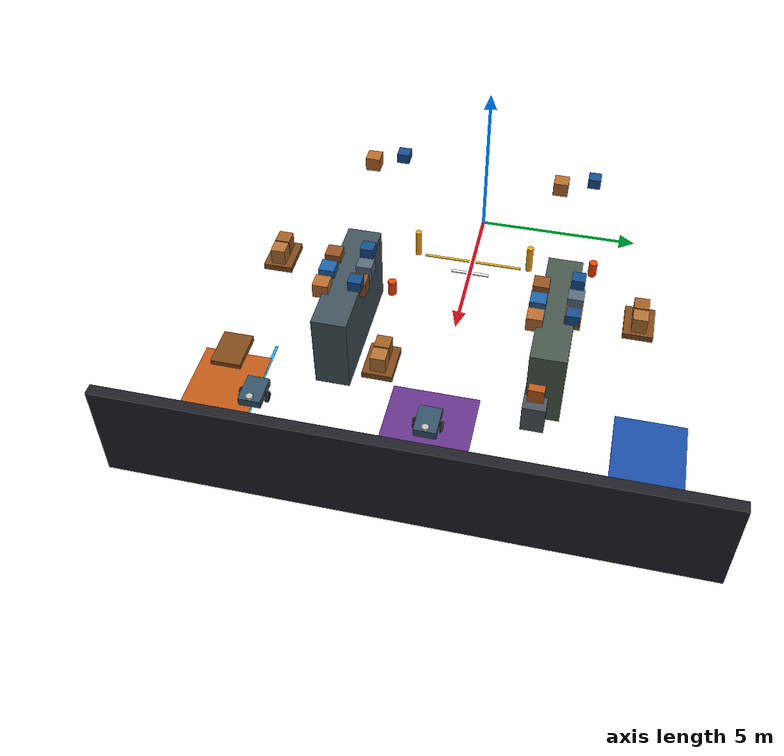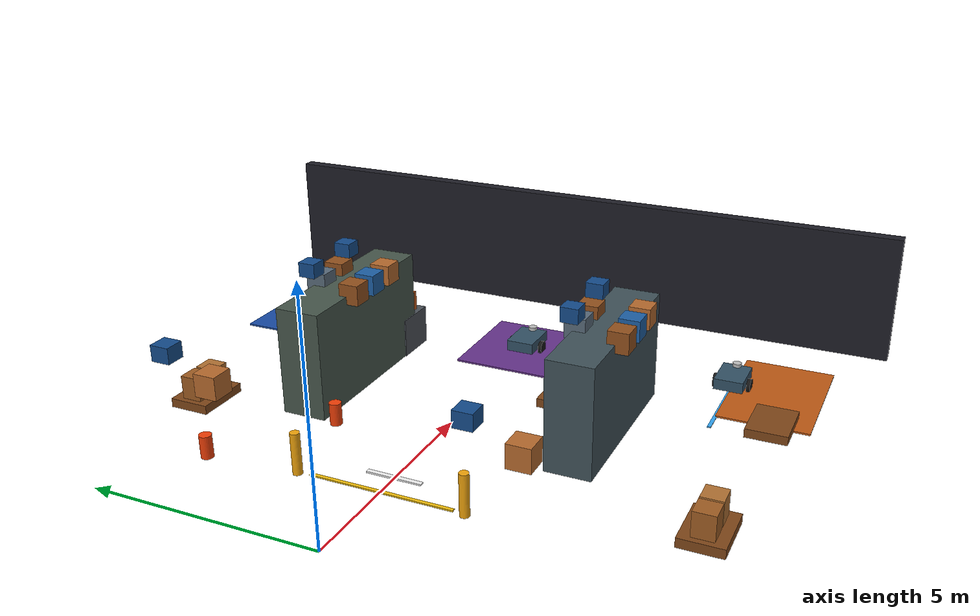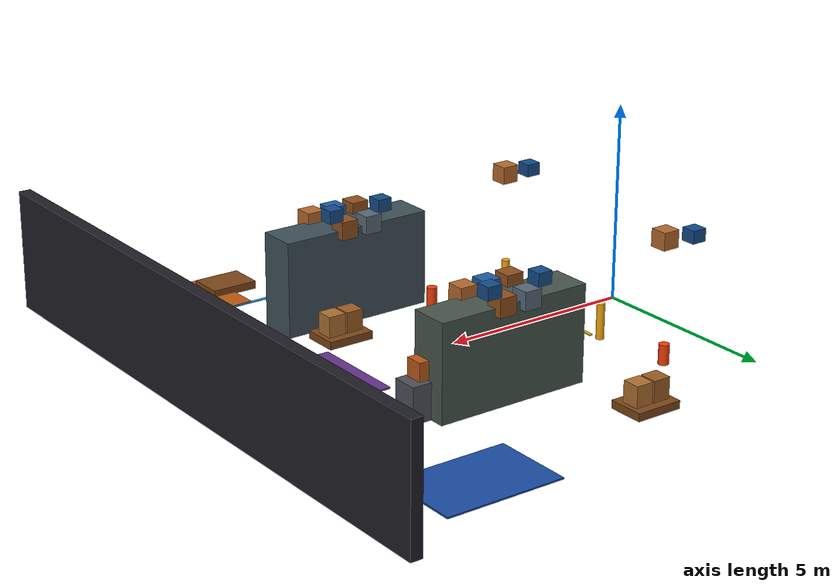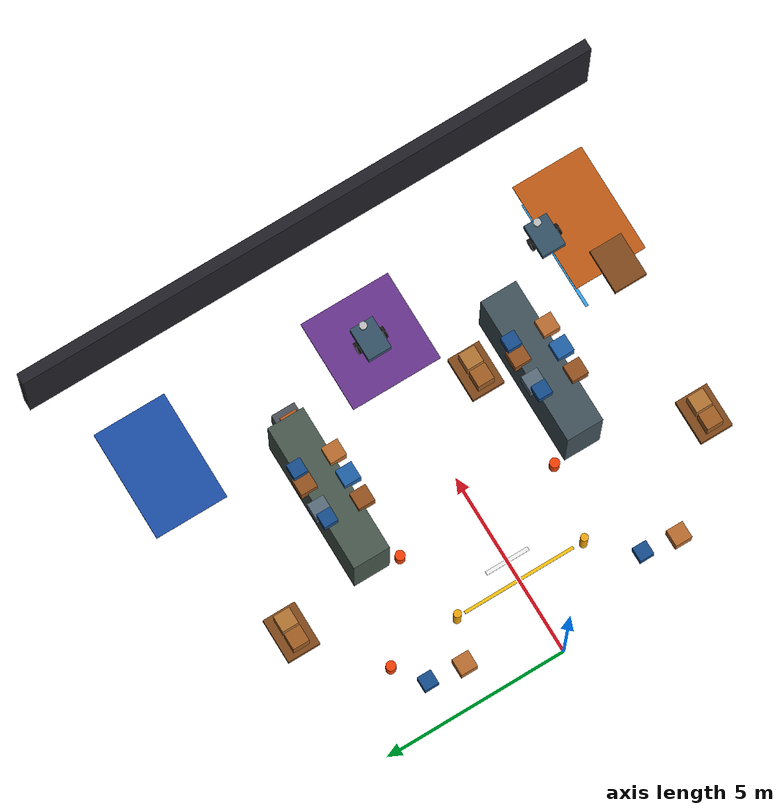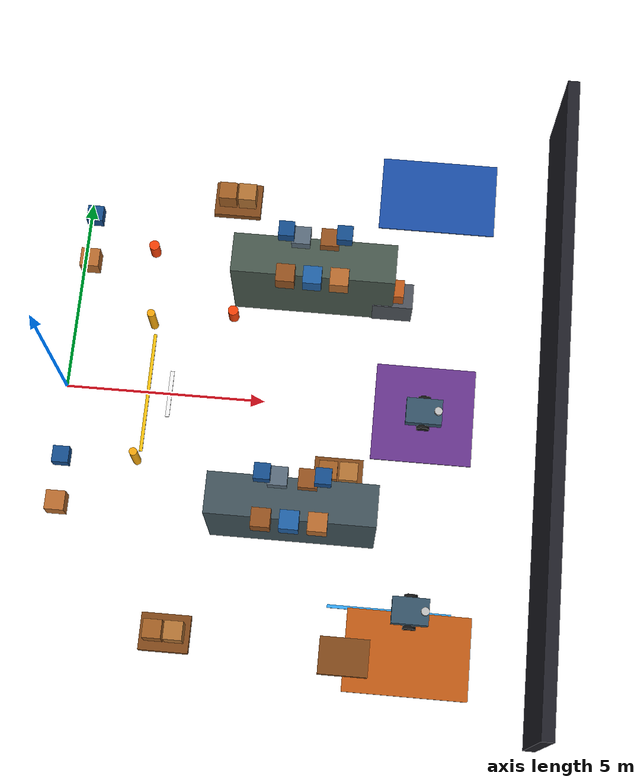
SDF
<sdf version="1.9">
 <world name="synaids_advanced_warehouse">
  <model name="wall_east">
   <static>true</static>
   <pose>12 0 1.5 0 0 0</pose>
   <link name="link">
    <collision name="collision"><geometry><box><size>0.3 16 3</size></box></geometry></collision>
    <visual name="visual">
     <geometry><box><size>0.3 16 3</size></box></geometry>
     <material><ambient>0.08 0.08 0.10 1</ambient><diffuse>0.12 0.12 0.15 1</diffuse></material>
    </visual>
   </link>
  </model>
  <model name="shelf_3">
   <static>true</static>
   <pose>6 3 1.2 0 0 0</pose>
   <link name="link">
    <collision name="collision"><geometry><box><size>4 1.0 2.4</size></box></geometry></collision>
    <visual name="visual">
     <geometry><box><size>4 1.0 2.4</size></box></geometry>
     <material><ambient>0.12 0.16 0.14 1</ambient><diffuse>0.28 0.34 0.30 1</diffuse></material>
    </visual>
   </link>
  </model>
  <model name="shelf_6">
   <static>true</static>
   <pose>6 -3 1.2 0 0 0</pose>
   <link name="link">
    <collision name="collision"><geometry><box><size>4 1.0 2.4</size></box></geometry></collision>
    <visual name="visual">
     <geometry><box><size>4 1.0 2.4</size></box></geometry>
     <material><ambient>0.12 0.18 0.20 1</ambient><diffuse>0.25 0.32 0.35 1</diffuse></material>
    </visual>
   </link>
  </model>
  <model name="delivery_zone">
   <static>true</static>
   <pose>9 -6 0.02 0 0 0</pose>
   <link name="link">
    <visual name="visual">
     <geometry><box><size>3 2 0.04</size></box></geometry>
     <material><ambient>0.35 0.16 0.03 1</ambient><diffuse>0.75 0.35 0.08 1</diffuse></material>
    </visual>
   </link>
  </model>
  <model name="charging_station">
   <static>true</static>
   <pose>9 6 0.02 0 0 0</pose>
   <link name="link">
    <visual name="visual">
     <geometry><box><size>3 2 0.04</size></box></geometry>
     <material><ambient>0.05 0.15 0.35 1</ambient><diffuse>0.10 0.30 0.65 1</diffuse></material>
    </visual>
   </link>
  </model>
  <model name="maintenance_area">
   <static>true</static>
   <pose>9 0 0.02 0 0 0</pose>
   <link name="link">
    <visual name="visual">
     <geometry><box><size>2.5 2.5 0.04</size></box></geometry>
     <material><ambient>0.18 0.08 0.25 1</ambient><diffuse>0.40 0.20 0.55 1</diffuse></material>
    </visual>
   </link>
  </model>
  <model name="R2">
   <pose>9 0 0.25 0 0 0</pose>
   <link name="base_link">
    <inertial><mass>12</mass><inertia><ixx>0.5</ixx><iyy>0.5</iyy><izz>0.5</izz></inertia></inertial>
    <collision name="base_collision"><geometry><box><size>0.9 0.65 0.25</size></box></geometry></collision>
    <visual name="base_visual">
     <geometry><box><size>0.9 0.65 0.25</size></box></geometry>
     <material><ambient>0.10 0.16 0.20 1</ambient><diffuse>0.20 0.32 0.40 1</diffuse></material>
    </visual>
   </link>
   <link name="left_wheel">
    <pose>0 0.38 -0.12 1.5708 0 0</pose>
    <inertial><mass>1</mass><inertia><ixx>0.02</ixx><iyy>0.02</iyy><izz>0.02</izz></inertia></inertial>
    <collision name="collision">
     <geometry><cylinder><radius>0.16</radius><length>0.08</length></cylinder></geometry>
    </collision>
    <visual name="visual">
     <geometry><cylinder><radius>0.16</radius><length>0.08</length></cylinder></geometry>
     <material><ambient>0.03 0.03 0.03 1</ambient><diffuse>0.08 0.08 0.08 1</diffuse></material>
    </visual>
   </link>
   <link name="right_wheel">
    <pose>0 -0.38 -0.12 1.5708 0 0</pose>
    <inertial><mass>1</mass><inertia><ixx>0.02</ixx><iyy>0.02</iyy><izz>0.02</izz></inertia></inertial>
    <collision name="collision">
     <geometry><cylinder><radius>0.16</radius><length>0.08</length></cylinder></geometry>
    </collision>
    <visual name="visual">
     <geometry><cylinder><radius>0.16</radius><length>0.08</length></cylinder></geometry>
     <material><ambient>0.03 0.03 0.03 1</ambient><diffuse>0.08 0.08 0.08 1</diffuse></material>
    </visual>
   </link>
   <link name="sensor">
    <pose>0.35 0 0.18 0 0 0</pose>
    <visual name="visual">
     <geometry><cylinder><radius>0.10</radius><length>0.08</length></cylinder></geometry>
     <material><ambient>0.65 0.65 0.65 1</ambient><diffuse>0.75 0.75 0.75 1</diffuse></material>
    </visual>
   </link>
   <plugin filename="gz-sim-diff-drive-system" name="gz::sim::systems::DiffDrive">
    <left_joint>left_wheel_joint</left_joint>
    <right_joint>right_wheel_joint</right_joint>
    <wheel_separation>0.76</wheel_separation>
    <wheel_radius>0.16</wheel_radius>
    <topic>/R2/cmd_vel</topic>
    <odom_topic>/R2/odom</odom_topic>
    <frame_id>odom</frame_id>
    <child_frame_id>base_link</child_frame_id>
   </plugin>
   <link name="lidar">
    <pose>0 0 0.35 0 0 0</pose>
    <sensor name="lidar_sensor" type="gpu_lidar">
     <topic>/R2/scan</topic>
     <update_rate>10</update_rate>
     <lidar>
      <scan>
       <horizontal>
        <samples>360</samples>
        <resolution>1</resolution>
        <min_angle>-3.14159</min_angle>
        <max_angle>3.14159</max_angle>
       </horizontal>
      </scan>
      <range><min>0.12</min><max>12</max><resolution>0.01</resolution></range>
     </lidar>
    </sensor>
   </link>
   <joint name="left_wheel_joint" type="revolute">
    <parent>base_link</parent>
    <child>left_wheel</child>
    <axis><xyz>0 1 0</xyz></axis>
   </joint>
   <joint name="right_wheel_joint" type="revolute">
    <parent>base_link</parent>
    <child>right_wheel</child>
    <axis><xyz>0 1 0</xyz></axis>
   </joint>
  </model>
  <model name="R3">
   <pose>9 -5 0.25 0 0 0</pose>
   <link name="base_link">
    <inertial><mass>12</mass><inertia><ixx>0.5</ixx><iyy>0.5</iyy><izz>0.5</izz></inertia></inertial>
    <collision name="base_collision"><geometry><box><size>0.9 0.65 0.25</size></box></geometry></collision>
    <visual name="base_visual">
     <geometry><box><size>0.9 0.65 0.25</size></box></geometry>
     <material><ambient>0.10 0.16 0.20 1</ambient><diffuse>0.20 0.32 0.40 1</diffuse></material>
    </visual>
   </link>
   <link name="left_wheel">
    <pose>0 0.38 -0.12 1.5708 0 0</pose>
    <inertial><mass>1</mass><inertia><ixx>0.02</ixx><iyy>0.02</iyy><izz>0.02</izz></inertia></inertial>
    <collision name="collision">
     <geometry><cylinder><radius>0.16</radius><length>0.08</length></cylinder></geometry>
    </collision>
    <visual name="visual">
     <geometry><cylinder><radius>0.16</radius><length>0.08</length></cylinder></geometry>
     <material><ambient>0.03 0.03 0.03 1</ambient><diffuse>0.08 0.08 0.08 1</diffuse></material>
    </visual>
   </link>
   <link name="right_wheel">
    <pose>0 -0.38 -0.12 1.5708 0 0</pose>
    <inertial><mass>1</mass><inertia><ixx>0.02</ixx><iyy>0.02</iyy><izz>0.02</izz></inertia></inertial>
    <collision name="collision">
     <geometry><cylinder><radius>0.16</radius><length>0.08</length></cylinder></geometry>
    </collision>
    <visual name="visual">
     <geometry><cylinder><radius>0.16</radius><length>0.08</length></cylinder></geometry>
     <material><ambient>0.03 0.03 0.03 1</ambient><diffuse>0.08 0.08 0.08 1</diffuse></material>
    </visual>
   </link>
   <link name="sensor">
    <pose>0.35 0 0.18 0 0 0</pose>
    <visual name="visual">
     <geometry><cylinder><radius>0.10</radius><length>0.08</length></cylinder></geometry>
     <material><ambient>0.65 0.65 0.65 1</ambient><diffuse>0.75 0.75 0.75 1</diffuse></material>
    </visual>
   </link>
   <plugin filename="gz-sim-diff-drive-system" name="gz::sim::systems::DiffDrive">
    <left_joint>left_wheel_joint</left_joint>
    <right_joint>right_wheel_joint</right_joint>
    <wheel_separation>0.76</wheel_separation>
    <wheel_radius>0.16</wheel_radius>
    <topic>/R3/cmd_vel</topic>
    <odom_topic>/R3/odom</odom_topic>
    <frame_id>odom</frame_id>
    <child_frame_id>base_link</child_frame_id>
   </plugin>
   <link name="lidar">
    <pose>0 0 0.35 0 0 0</pose>
    <sensor name="lidar_sensor" type="gpu_lidar">
     <topic>/R3/scan</topic>
     <update_rate>10</update_rate>
     <lidar>
      <scan>
       <horizontal>
        <samples>360</samples>
        <resolution>1</resolution>
        <min_angle>-3.14159</min_angle>
        <max_angle>3.14159</max_angle>
       </horizontal>
      </scan>
      <range><min>0.12</min><max>12</max><resolution>0.01</resolution></range>
     </lidar>
    </sensor>
   </link>
   <joint name="left_wheel_joint" type="revolute">
    <parent>base_link</parent>
    <child>left_wheel</child>
    <axis><xyz>0 1 0</xyz></axis>
   </joint>
   <joint name="right_wheel_joint" type="revolute">
    <parent>base_link</parent>
    <child>right_wheel</child>
    <axis><xyz>0 1 0</xyz></axis>
   </joint>
  </model>
  <model name="inventory_9">
   <static>true</static>
   <pose>0.65 2.45 2.45 0 0 0</pose>
   <link name="link">
    <collision name="collision"><geometry><box><size>0.45 0.45 0.45</size></box></geometry></collision>
    <visual name="visual">
     <geometry><box><size>0.45 0.45 0.45</size></box></geometry>
     <material><ambient>0.72 0.42 0.18 1</ambient><diffuse>0.72 0.42 0.18 1</diffuse></material>
    </visual>
   </link>
  </model>
  <model name="bin_13">
   <static>true</static>
   <pose>0.7 3.45 2.85 0 0 0</pose>
   <link name="link">
    <collision name="collision"><geometry><box><size>0.38 0.38 0.32</size></box></geometry></collision>
    <visual name="visual">
     <geometry><box><size>0.38 0.38 0.32</size></box></geometry>
     <material><ambient>0.08 0.30 0.55 1</ambient><diffuse>0.08 0.30 0.55 1</diffuse></material>
    </visual>
   </link>
  </model>
  <model name="inventory_14">
   <static>true</static>
   <pose>5.35 2.45 2.45 0 0 0</pose>
   <link name="link">
    <collision name="collision"><geometry><box><size>0.45 0.45 0.45</size></box></geometry></collision>
    <visual name="visual">
     <geometry><box><size>0.45 0.45 0.45</size></box></geometry>
     <material><ambient>0.58 0.32 0.12 1</ambient><diffuse>0.58 0.32 0.12 1</diffuse></material>
    </visual>
   </link>
  </model>
  <model name="inventory_15">
   <static>true</static>
   <pose>6.0 2.45 2.45 0 0 0</pose>
   <link name="link">
    <collision name="collision"><geometry><box><size>0.45 0.45 0.45</size></box></geometry></collision>
    <visual name="visual">
     <geometry><box><size>0.45 0.45 0.45</size></box></geometry>
     <material><ambient>0.12 0.38 0.65 1</ambient><diffuse>0.12 0.38 0.65 1</diffuse></material>
    </visual>
   </link>
  </model>
  <model name="inventory_16">
   <static>true</static>
   <pose>6.65 2.45 2.45 0 0 0</pose>
   <link name="link">
    <collision name="collision"><geometry><box><size>0.45 0.45 0.45</size></box></geometry></collision>
    <visual name="visual">
     <geometry><box><size>0.45 0.45 0.45</size></box></geometry>
     <material><ambient>0.72 0.42 0.18 1</ambient><diffuse>0.72 0.42 0.18 1</diffuse></material>
    </visual>
   </link>
  </model>
  <model name="inventory_17">
   <static>true</static>
   <pose>5.65 3.45 2.45 0 0 0</pose>
   <link name="link">
    <collision name="collision"><geometry><box><size>0.45 0.45 0.45</size></box></geometry></collision>
    <visual name="visual">
     <geometry><box><size>0.45 0.45 0.45</size></box></geometry>
     <material><ambient>0.35 0.42 0.48 1</ambient><diffuse>0.35 0.42 0.48 1</diffuse></material>
    </visual>
   </link>
  </model>
  <model name="inventory_18">
   <static>true</static>
   <pose>6.35 3.45 2.45 0 0 0</pose>
   <link name="link">
    <collision name="collision"><geometry><box><size>0.45 0.45 0.45</size></box></geometry></collision>
    <visual name="visual">
     <geometry><box><size>0.45 0.45 0.45</size></box></geometry>
     <material><ambient>0.58 0.32 0.12 1</ambient><diffuse>0.58 0.32 0.12 1</diffuse></material>
    </visual>
   </link>
  </model>
  <model name="bin_19">
   <static>true</static>
   <pose>5.3 3.45 2.85 0 0 0</pose>
   <link name="link">
    <collision name="collision"><geometry><box><size>0.38 0.38 0.32</size></box></geometry></collision>
    <visual name="visual">
     <geometry><box><size>0.38 0.38 0.32</size></box></geometry>
     <material><ambient>0.08 0.30 0.55 1</ambient><diffuse>0.08 0.30 0.55 1</diffuse></material>
    </visual>
   </link>
  </model>
  <model name="bin_20">
   <static>true</static>
   <pose>6.7 3.45 2.85 0 0 0</pose>
   <link name="link">
    <collision name="collision"><geometry><box><size>0.38 0.38 0.32</size></box></geometry></collision>
    <visual name="visual">
     <geometry><box><size>0.38 0.38 0.32</size></box></geometry>
     <material><ambient>0.08 0.30 0.55 1</ambient><diffuse>0.08 0.30 0.55 1</diffuse></material>
    </visual>
   </link>
  </model>
  <model name="inventory_30">
   <static>true</static>
   <pose>0.65 -3.55 2.45 0 0 0</pose>
   <link name="link">
    <collision name="collision"><geometry><box><size>0.45 0.45 0.45</size></box></geometry></collision>
    <visual name="visual">
     <geometry><box><size>0.45 0.45 0.45</size></box></geometry>
     <material><ambient>0.72 0.42 0.18 1</ambient><diffuse>0.72 0.42 0.18 1</diffuse></material>
    </visual>
   </link>
  </model>
  <model name="bin_34">
   <static>true</static>
   <pose>0.7 -2.55 2.85 0 0 0</pose>
   <link name="link">
    <collision name="collision"><geometry><box><size>0.38 0.38 0.32</size></box></geometry></collision>
    <visual name="visual">
     <geometry><box><size>0.38 0.38 0.32</size></box></geometry>
     <material><ambient>0.08 0.30 0.55 1</ambient><diffuse>0.08 0.30 0.55 1</diffuse></material>
    </visual>
   </link>
  </model>
  <model name="inventory_35">
   <static>true</static>
   <pose>5.35 -3.55 2.45 0 0 0</pose>
   <link name="link">
    <collision name="collision"><geometry><box><size>0.45 0.45 0.45</size></box></geometry></collision>
    <visual name="visual">
     <geometry><box><size>0.45 0.45 0.45</size></box></geometry>
     <material><ambient>0.58 0.32 0.12 1</ambient><diffuse>0.58 0.32 0.12 1</diffuse></material>
    </visual>
   </link>
  </model>
  <model name="inventory_36">
   <static>true</static>
   <pose>6.0 -3.55 2.45 0 0 0</pose>
   <link name="link">
    <collision name="collision"><geometry><box><size>0.45 0.45 0.45</size></box></geometry></collision>
    <visual name="visual">
     <geometry><box><size>0.45 0.45 0.45</size></box></geometry>
     <material><ambient>0.12 0.38 0.65 1</ambient><diffuse>0.12 0.38 0.65 1</diffuse></material>
    </visual>
   </link>
  </model>
  <model name="inventory_37">
   <static>true</static>
   <pose>6.65 -3.55 2.45 0 0 0</pose>
   <link name="link">
    <collision name="collision"><geometry><box><size>0.45 0.45 0.45</size></box></geometry></collision>
    <visual name="visual">
     <geometry><box><size>0.45 0.45 0.45</size></box></geometry>
     <material><ambient>0.72 0.42 0.18 1</ambient><diffuse>0.72 0.42 0.18 1</diffuse></material>
    </visual>
   </link>
  </model>
  <model name="inventory_38">
   <static>true</static>
   <pose>5.65 -2.55 2.45 0 0 0</pose>
   <link name="link">
    <collision name="collision"><geometry><box><size>0.45 0.45 0.45</size></box></geometry></collision>
    <visual name="visual">
     <geometry><box><size>0.45 0.45 0.45</size></box></geometry>
     <material><ambient>0.35 0.42 0.48 1</ambient><diffuse>0.35 0.42 0.48 1</diffuse></material>
    </visual>
   </link>
  </model>
  <model name="inventory_39">
   <static>true</static>
   <pose>6.35 -2.55 2.45 0 0 0</pose>
   <link name="link">
    <collision name="collision"><geometry><box><size>0.45 0.45 0.45</size></box></geometry></collision>
    <visual name="visual">
     <geometry><box><size>0.45 0.45 0.45</size></box></geometry>
     <material><ambient>0.58 0.32 0.12 1</ambient><diffuse>0.58 0.32 0.12 1</diffuse></material>
    </visual>
   </link>
  </model>
  <model name="bin_40">
   <static>true</static>
   <pose>5.3 -2.55 2.85 0 0 0</pose>
   <link name="link">
    <collision name="collision"><geometry><box><size>0.38 0.38 0.32</size></box></geometry></collision>
    <visual name="visual">
     <geometry><box><size>0.38 0.38 0.32</size></box></geometry>
     <material><ambient>0.08 0.30 0.55 1</ambient><diffuse>0.08 0.30 0.55 1</diffuse></material>
    </visual>
   </link>
  </model>
  <model name="bin_41">
   <static>true</static>
   <pose>6.7 -2.55 2.85 0 0 0</pose>
   <link name="link">
    <collision name="collision"><geometry><box><size>0.38 0.38 0.32</size></box></geometry></collision>
    <visual name="visual">
     <geometry><box><size>0.38 0.38 0.32</size></box></geometry>
     <material><ambient>0.08 0.30 0.55 1</ambient><diffuse>0.08 0.30 0.55 1</diffuse></material>
    </visual>
   </link>
  </model>
  <model name="pallet_2">
   <static>true</static>
   <pose>3.8 5.4 0.1 0 0 0</pose>
   <link name="link">
    <collision name="collision"><geometry><box><size>1.2 0.9 0.2</size></box></geometry></collision>
    <visual name="visual">
     <geometry><box><size>1.2 0.9 0.2</size></box></geometry>
     <material><ambient>0.50 0.28 0.10 1</ambient><diffuse>0.50 0.28 0.10 1</diffuse></material>
    </visual>
   </link>
  </model>
  <model name="pallet_box_2_a">
   <static>true</static>
   <pose>3.55 5.4 0.45 0 0 0</pose>
   <link name="link">
    <collision name="collision"><geometry><box><size>0.45 0.45 0.55</size></box></geometry></collision>
    <visual name="visual">
     <geometry><box><size>0.45 0.45 0.55</size></box></geometry>
     <material><ambient>0.63 0.37 0.14 1</ambient><diffuse>0.63 0.37 0.14 1</diffuse></material>
    </visual>
   </link>
  </model>
  <model name="pallet_box_2_b">
   <static>true</static>
   <pose>4.05 5.4 0.45 0 0 0</pose>
   <link name="link">
    <collision name="collision"><geometry><box><size>0.45 0.45 0.55</size></box></geometry></collision>
    <visual name="visual">
     <geometry><box><size>0.45 0.45 0.55</size></box></geometry>
     <material><ambient>0.70 0.45 0.20 1</ambient><diffuse>0.70 0.45 0.20 1</diffuse></material>
    </visual>
   </link>
  </model>
  <model name="pallet_3">
   <static>true</static>
   <pose>7.0 -1.8 0.1 0 0 0</pose>
   <link name="link">
    <collision name="collision"><geometry><box><size>1.2 0.9 0.2</size></box></geometry></collision>
    <visual name="visual">
     <geometry><box><size>1.2 0.9 0.2</size></box></geometry>
     <material><ambient>0.50 0.28 0.10 1</ambient><diffuse>0.50 0.28 0.10 1</diffuse></material>
    </visual>
   </link>
  </model>
  <model name="pallet_box_3_a">
   <static>true</static>
   <pose>6.75 -1.8 0.45 0 0 0</pose>
   <link name="link">
    <collision name="collision"><geometry><box><size>0.45 0.45 0.55</size></box></geometry></collision>
    <visual name="visual">
     <geometry><box><size>0.45 0.45 0.55</size></box></geometry>
     <material><ambient>0.63 0.37 0.14 1</ambient><diffuse>0.63 0.37 0.14 1</diffuse></material>
    </visual>
   </link>
  </model>
  <model name="pallet_box_3_b">
   <static>true</static>
   <pose>7.25 -1.8 0.45 0 0 0</pose>
   <link name="link">
    <collision name="collision"><geometry><box><size>0.45 0.45 0.55</size></box></geometry></collision>
    <visual name="visual">
     <geometry><box><size>0.45 0.45 0.55</size></box></geometry>
     <material><ambient>0.70 0.45 0.20 1</ambient><diffuse>0.70 0.45 0.20 1</diffuse></material>
    </visual>
   </link>
  </model>
  <model name="pallet_4">
   <static>true</static>
   <pose>3.2 -6.0 0.1 0 0 0</pose>
   <link name="link">
    <collision name="collision"><geometry><box><size>1.2 0.9 0.2</size></box></geometry></collision>
    <visual name="visual">
     <geometry><box><size>1.2 0.9 0.2</size></box></geometry>
     <material><ambient>0.50 0.28 0.10 1</ambient><diffuse>0.50 0.28 0.10 1</diffuse></material>
    </visual>
   </link>
  </model>
  <model name="pallet_box_4_a">
   <static>true</static>
   <pose>2.95 -6.0 0.45 0 0 0</pose>
   <link name="link">
    <collision name="collision"><geometry><box><size>0.45 0.45 0.55</size></box></geometry></collision>
    <visual name="visual">
     <geometry><box><size>0.45 0.45 0.55</size></box></geometry>
     <material><ambient>0.63 0.37 0.14 1</ambient><diffuse>0.63 0.37 0.14 1</diffuse></material>
    </visual>
   </link>
  </model>
  <model name="pallet_box_4_b">
   <static>true</static>
   <pose>3.45 -6.0 0.45 0 0 0</pose>
   <link name="link">
    <collision name="collision"><geometry><box><size>0.45 0.45 0.55</size></box></geometry></collision>
    <visual name="visual">
     <geometry><box><size>0.45 0.45 0.55</size></box></geometry>
     <material><ambient>0.70 0.45 0.20 1</ambient><diffuse>0.70 0.45 0.20 1</diffuse></material>
    </visual>
   </link>
  </model>
  <model name="intersection_east">
   <static>true</static>
   <pose>2.05 0 0.015 0 0 0</pose>
   <link name="link">
    <visual name="visual">
     <geometry><box><size>0.08 3.1 0.03</size></box></geometry>
     <material><ambient>0.95 0.75 0.05 1</ambient><diffuse>0.95 0.75 0.05 1</diffuse></material>
    </visual>
   </link>
  </model>
  <model name="stop_R2">
   <static>true</static>
   <pose>2.6 0 0.02 0 0 0</pose>
   <link name="link">
    <visual name="visual">
     <geometry><box><size>0.1 1.2 0.035</size></box></geometry>
     <material><ambient>0.95 0.95 0.95 1</ambient><diffuse>0.95 0.95 0.95 1</diffuse></material>
    </visual>
   </link>
  </model>
  <model name="bollard_1">
   <static>true</static>
   <pose>2.0 1.8 0.45 0 0 0</pose>
   <link name="link">
    <collision name="collision">
     <geometry><cylinder><radius>0.1</radius><length>0.9</length></cylinder></geometry>
    </collision>
    <visual name="visual">
     <geometry><cylinder><radius>0.1</radius><length>0.9</length></cylinder></geometry>
     <material><ambient>0.95 0.65 0.05 1</ambient><diffuse>0.95 0.65 0.05 1</diffuse></material>
    </visual>
   </link>
  </model>
  <model name="bollard_3">
   <static>true</static>
   <pose>2.0 -1.8 0.45 0 0 0</pose>
   <link name="link">
    <collision name="collision">
     <geometry><cylinder><radius>0.1</radius><length>0.9</length></cylinder></geometry>
    </collision>
    <visual name="visual">
     <geometry><cylinder><radius>0.1</radius><length>0.9</length></cylinder></geometry>
     <material><ambient>0.95 0.65 0.05 1</ambient><diffuse>0.95 0.65 0.05 1</diffuse></material>
    </visual>
   </link>
  </model>
  <model name="safety_cone_2">
   <static>true</static>
   <pose>4.0 2.2 0.25 0 0 0</pose>
   <link name="link">
    <collision name="collision">
     <geometry><cylinder><radius>0.13</radius><length>0.5</length></cylinder></geometry>
    </collision>
    <visual name="visual">
     <geometry><cylinder><radius>0.13</radius><length>0.5</length></cylinder></geometry>
     <material><ambient>0.95 0.25 0.03 1</ambient><diffuse>0.95 0.25 0.03 1</diffuse></material>
    </visual>
   </link>
  </model>
  <model name="safety_cone_3">
   <static>true</static>
   <pose>4.0 -2.2 0.25 0 0 0</pose>
   <link name="link">
    <collision name="collision">
     <geometry><cylinder><radius>0.13</radius><length>0.5</length></cylinder></geometry>
    </collision>
    <visual name="visual">
     <geometry><cylinder><radius>0.13</radius><length>0.5</length></cylinder></geometry>
     <material><ambient>0.95 0.25 0.03 1</ambient><diffuse>0.95 0.25 0.03 1</diffuse></material>
    </visual>
   </link>
  </model>
  <model name="safety_cone_4">
   <static>true</static>
   <pose>1.8 3.8 0.25 0 0 0</pose>
   <link name="link">
    <collision name="collision">
     <geometry><cylinder><radius>0.13</radius><length>0.5</length></cylinder></geometry>
    </collision>
    <visual name="visual">
     <geometry><cylinder><radius>0.13</radius><length>0.5</length></cylinder></geometry>
     <material><ambient>0.95 0.25 0.03 1</ambient><diffuse>0.95 0.25 0.03 1</diffuse></material>
    </visual>
   </link>
  </model>
  <model name="loading_marking">
   <static>true</static>
   <pose>8.5 -5.0 0.012 0 0 0</pose>
   <link name="link">
    <visual name="visual">
     <geometry><box><size>3.0 0.08 0.025</size></box></geometry>
     <material><ambient>0.20 0.65 0.95 1</ambient><diffuse>0.20 0.65 0.95 1</diffuse></material>
    </visual>
   </link>
  </model>
  <model name="loading_pallet">
   <static>true</static>
   <pose>7.5 -6.2 0.1 0 0 0</pose>
   <link name="link">
    <collision name="collision"><geometry><box><size>1.2 0.9 0.2</size></box></geometry></collision>
    <visual name="visual">
     <geometry><box><size>1.2 0.9 0.2</size></box></geometry>
     <material><ambient>0.50 0.28 0.10 1</ambient><diffuse>0.50 0.28 0.10 1</diffuse></material>
    </visual>
   </link>
  </model>
  <model name="maintenance_cart">
   <static>true</static>
   <pose>8.0 2.8 0.45 0 0 0</pose>
   <link name="link">
    <collision name="collision"><geometry><box><size>1.0 0.65 0.9</size></box></geometry></collision>
    <visual name="visual">
     <geometry><box><size>1.0 0.65 0.9</size></box></geometry>
     <material><ambient>0.30 0.32 0.35 1</ambient><diffuse>0.30 0.32 0.35 1</diffuse></material>
    </visual>
   </link>
  </model>
  <model name="maintenance_box">
   <static>true</static>
   <pose>8.0 2.8 1.15 0 0 0</pose>
   <link name="link">
    <collision name="collision"><geometry><box><size>0.5 0.45 0.45</size></box></geometry></collision>
    <visual name="visual">
     <geometry><box><size>0.5 0.45 0.45</size></box></geometry>
     <material><ambient>0.75 0.35 0.10 1</ambient><diffuse>0.75 0.35 0.10 1</diffuse></material>
    </visual>
   </link>
  </model>
 </world>
</sdf>
